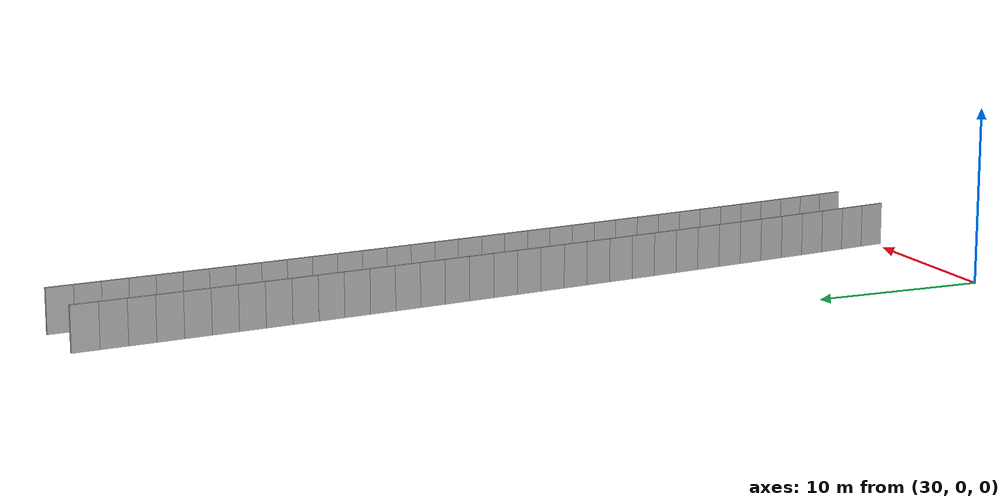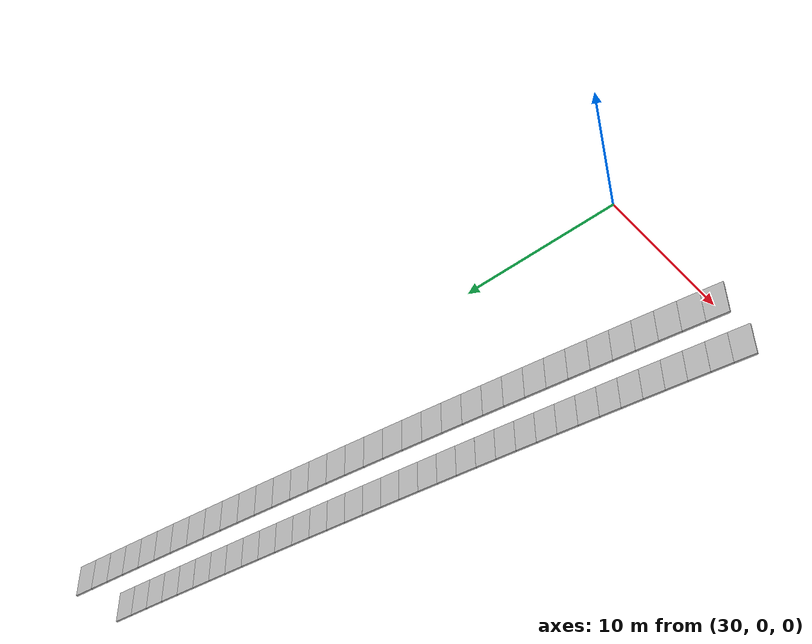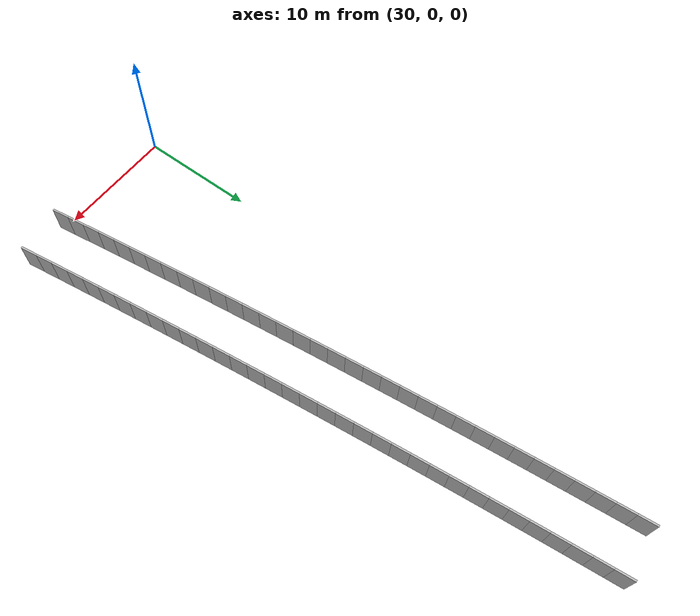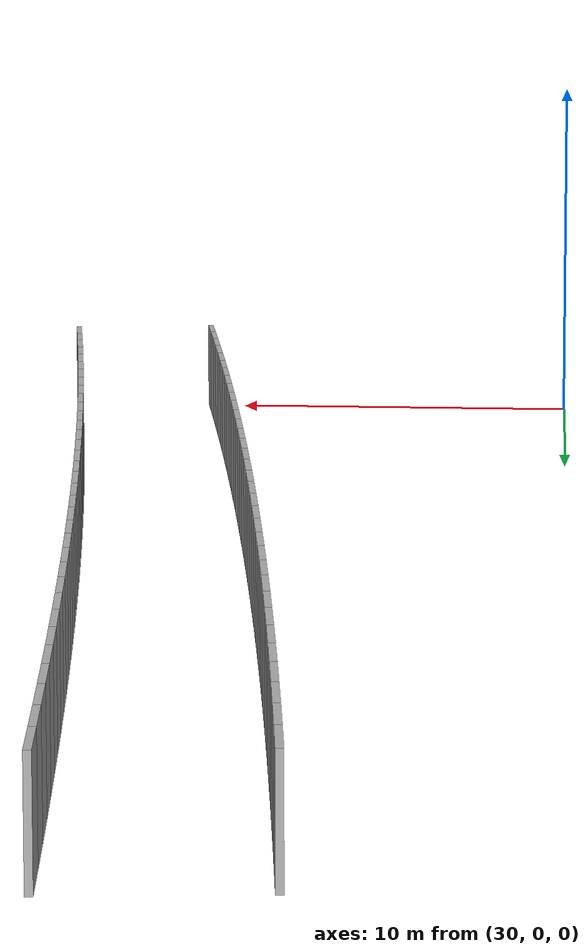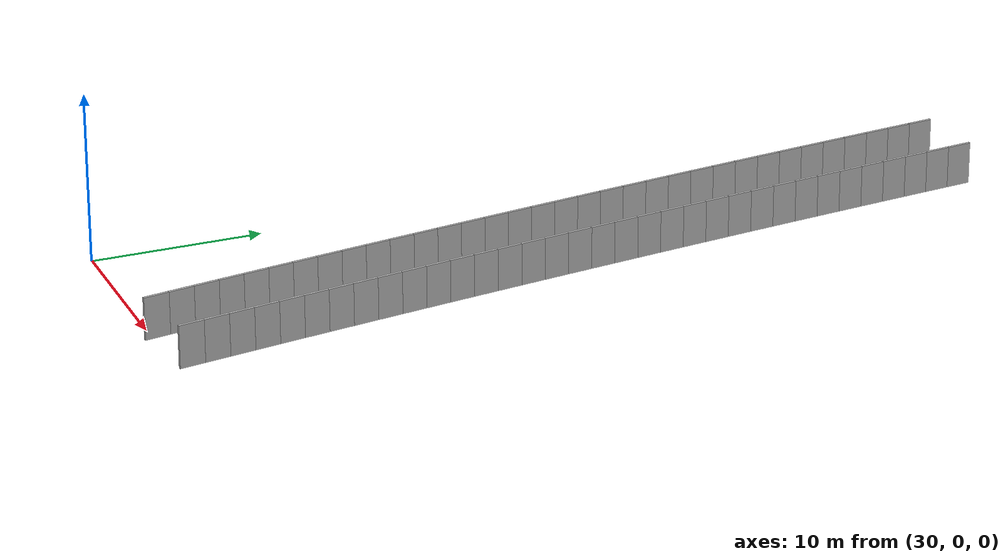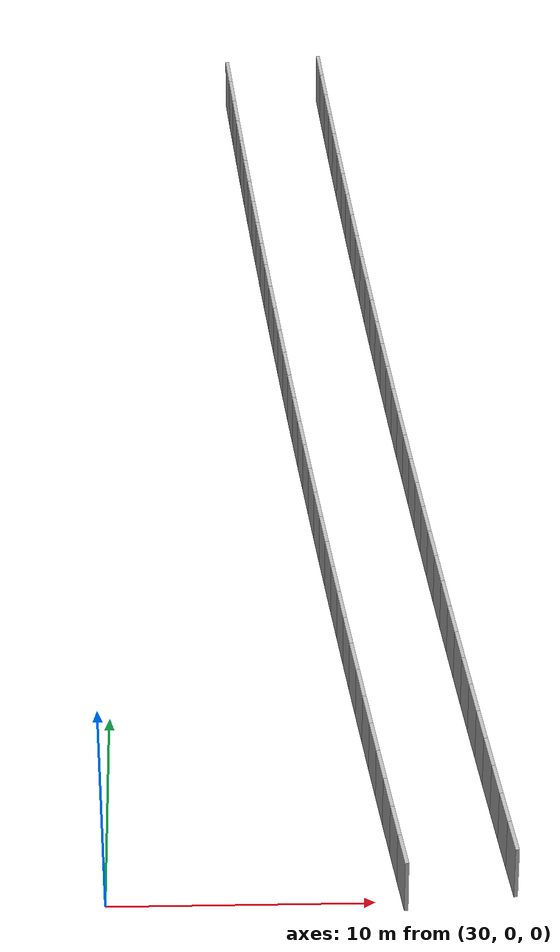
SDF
<?xml version="1.0" ?>
<sdf version="1.6">
  <model name="sps_0223">
    <pose frame="">0 0 0 0 -0 0</pose>
    <static>1</static>
    <self_collide>0</self_collide>
    <allow_auto_disable>0</allow_auto_disable>
    <link name="Wall5270">
      <kinematic>0</kinematic>
      <gravity>1</gravity>
      <self_collide>0</self_collide>
      <collision name="collision">
        <geometry>
          <box>
            <size>1.49644 0.15 2.5</size>
          </box>
        </geometry>
        <pose frame="">0 0 0 0 -0 0</pose>
      </collision>
      <visual name="visual">
        <geometry>
          <box>
            <size>1.49644 0.15 2.5</size>
          </box>
        </geometry>
        <pose frame="">0 0 0 0 -0 0</pose>
        <cast_shadows>1</cast_shadows>
        <transparency>0.0</transparency>
      </visual>
      <pose frame="">38.9795 49.9341 1.25 0 0 -1.47238</pose>
    </link>
    <link name="Wall5271">
      <kinematic>0</kinematic>
      <gravity>1</gravity>
      <self_collide>0</self_collide>
      <collision name="collision">
        <geometry>
          <box>
            <size>1.49667 0.15 2.5</size>
          </box>
        </geometry>
        <pose frame="">0 0 0 0 -0 0</pose>
      </collision>
      <visual name="visual">
        <geometry>
          <box>
            <size>1.49667 0.15 2.5</size>
          </box>
        </geometry>
        <pose frame="">0 0 0 0 -0 0</pose>
        <cast_shadows>1</cast_shadows>
        <transparency>0.0</transparency>
      </visual>
      <pose frame="">39.1278 48.4449 1.25 0 0 -1.4708</pose>
    </link>
    <link name="Wall5272">
      <kinematic>0</kinematic>
      <gravity>1</gravity>
      <self_collide>0</self_collide>
      <collision name="collision">
        <geometry>
          <box>
            <size>1.49649 0.15 2.5</size>
          </box>
        </geometry>
        <pose frame="">0 0 0 0 -0 0</pose>
      </collision>
      <visual name="visual">
        <geometry>
          <box>
            <size>1.49649 0.15 2.5</size>
          </box>
        </geometry>
        <pose frame="">0 0 0 0 -0 0</pose>
        <cast_shadows>1</cast_shadows>
        <transparency>0.0</transparency>
      </visual>
      <pose frame="">39.2784 46.9559 1.25 0 0 -1.46919</pose>
    </link>
    <link name="Wall5273">
      <kinematic>0</kinematic>
      <gravity>1</gravity>
      <self_collide>0</self_collide>
      <collision name="collision">
        <geometry>
          <box>
            <size>1.49653 0.15 2.5</size>
          </box>
        </geometry>
        <pose frame="">0 0 0 0 -0 0</pose>
      </collision>
      <visual name="visual">
        <geometry>
          <box>
            <size>1.49653 0.15 2.5</size>
          </box>
        </geometry>
        <pose frame="">0 0 0 0 -0 0</pose>
        <cast_shadows>1</cast_shadows>
        <transparency>0.0</transparency>
      </visual>
      <pose frame="">39.4313 45.4672 1.25 0 0 -1.46771</pose>
    </link>
    <link name="Wall5274">
      <kinematic>0</kinematic>
      <gravity>1</gravity>
      <self_collide>0</self_collide>
      <collision name="collision">
        <geometry>
          <box>
            <size>1.49644 0.15 2.5</size>
          </box>
        </geometry>
        <pose frame="">0 0 0 0 -0 0</pose>
      </collision>
      <visual name="visual">
        <geometry>
          <box>
            <size>1.49644 0.15 2.5</size>
          </box>
        </geometry>
        <pose frame="">0 0 0 0 -0 0</pose>
        <cast_shadows>1</cast_shadows>
        <transparency>0.0</transparency>
      </visual>
      <pose frame="">39.5866 43.9788 1.25 0 0 -1.46595</pose>
    </link>
    <link name="Wall5275">
      <kinematic>0</kinematic>
      <gravity>1</gravity>
      <self_collide>0</self_collide>
      <collision name="collision">
        <geometry>
          <box>
            <size>1.49666 0.15 2.5</size>
          </box>
        </geometry>
        <pose frame="">0 0 0 0 -0 0</pose>
      </collision>
      <visual name="visual">
        <geometry>
          <box>
            <size>1.49666 0.15 2.5</size>
          </box>
        </geometry>
        <pose frame="">0 0 0 0 -0 0</pose>
        <cast_shadows>1</cast_shadows>
        <transparency>0.0</transparency>
      </visual>
      <pose frame="">39.7443 42.4906 1.25 0 0 -1.46453</pose>
    </link>
    <link name="Wall5276">
      <kinematic>0</kinematic>
      <gravity>1</gravity>
      <self_collide>0</self_collide>
      <collision name="collision">
        <geometry>
          <box>
            <size>1.49648 0.15 2.5</size>
          </box>
        </geometry>
        <pose frame="">0 0 0 0 -0 0</pose>
      </collision>
      <visual name="visual">
        <geometry>
          <box>
            <size>1.49648 0.15 2.5</size>
          </box>
        </geometry>
        <pose frame="">0 0 0 0 -0 0</pose>
        <cast_shadows>1</cast_shadows>
        <transparency>0.0</transparency>
      </visual>
      <pose frame="">39.9041 41.0026 1.25 0 0 -1.46299</pose>
    </link>
    <link name="Wall5277">
      <kinematic>0</kinematic>
      <gravity>1</gravity>
      <self_collide>0</self_collide>
      <collision name="collision">
        <geometry>
          <box>
            <size>1.49656 0.15 2.5</size>
          </box>
        </geometry>
        <pose frame="">0 0 0 0 -0 0</pose>
      </collision>
      <visual name="visual">
        <geometry>
          <box>
            <size>1.49656 0.15 2.5</size>
          </box>
        </geometry>
        <pose frame="">0 0 0 0 -0 0</pose>
        <cast_shadows>1</cast_shadows>
        <transparency>0.0</transparency>
      </visual>
      <pose frame="">40.0663 39.5149 1.25 0 0 -1.4614</pose>
    </link>
    <link name="Wall5278">
      <kinematic>0</kinematic>
      <gravity>1</gravity>
      <self_collide>0</self_collide>
      <collision name="collision">
        <geometry>
          <box>
            <size>1.49642 0.15 2.5</size>
          </box>
        </geometry>
        <pose frame="">0 0 0 0 -0 0</pose>
      </collision>
      <visual name="visual">
        <geometry>
          <box>
            <size>1.49642 0.15 2.5</size>
          </box>
        </geometry>
        <pose frame="">0 0 0 0 -0 0</pose>
        <cast_shadows>1</cast_shadows>
        <transparency>0.0</transparency>
      </visual>
      <pose frame="">40.231 38.0275 1.25 0 0 -1.45963</pose>
    </link>
    <link name="Wall5279">
      <kinematic>0</kinematic>
      <gravity>1</gravity>
      <self_collide>0</self_collide>
      <collision name="collision">
        <geometry>
          <box>
            <size>1.4965 0.15 2.5</size>
          </box>
        </geometry>
        <pose frame="">0 0 0 0 -0 0</pose>
      </collision>
      <visual name="visual">
        <geometry>
          <box>
            <size>1.4965 0.15 2.5</size>
          </box>
        </geometry>
        <pose frame="">0 0 0 0 -0 0</pose>
        <cast_shadows>1</cast_shadows>
        <transparency>0.0</transparency>
      </visual>
      <pose frame="">40.3982 36.5404 1.25 0 0 -1.45803</pose>
    </link>
    <link name="Wall5280">
      <kinematic>0</kinematic>
      <gravity>1</gravity>
      <self_collide>0</self_collide>
      <collision name="collision">
        <geometry>
          <box>
            <size>1.49657 0.15 2.5</size>
          </box>
        </geometry>
        <pose frame="">0 0 0 0 -0 0</pose>
      </collision>
      <visual name="visual">
        <geometry>
          <box>
            <size>1.49657 0.15 2.5</size>
          </box>
        </geometry>
        <pose frame="">0 0 0 0 -0 0</pose>
        <cast_shadows>1</cast_shadows>
        <transparency>0.0</transparency>
      </visual>
      <pose frame="">40.5677 35.0535 1.25 0 0 -1.45656</pose>
    </link>
    <link name="Wall5281">
      <kinematic>0</kinematic>
      <gravity>1</gravity>
      <self_collide>0</self_collide>
      <collision name="collision">
        <geometry>
          <box>
            <size>1.49658 0.15 2.5</size>
          </box>
        </geometry>
        <pose frame="">0 0 0 0 -0 0</pose>
      </collision>
      <visual name="visual">
        <geometry>
          <box>
            <size>1.49658 0.15 2.5</size>
          </box>
        </geometry>
        <pose frame="">0 0 0 0 -0 0</pose>
        <cast_shadows>1</cast_shadows>
        <transparency>0.0</transparency>
      </visual>
      <pose frame="">40.7394 33.5668 1.25 0 0 -1.45508</pose>
    </link>
    <link name="Wall5282">
      <kinematic>0</kinematic>
      <gravity>1</gravity>
      <self_collide>0</self_collide>
      <collision name="collision">
        <geometry>
          <box>
            <size>1.49652 0.15 2.5</size>
          </box>
        </geometry>
        <pose frame="">0 0 0 0 -0 0</pose>
      </collision>
      <visual name="visual">
        <geometry>
          <box>
            <size>1.49652 0.15 2.5</size>
          </box>
        </geometry>
        <pose frame="">0 0 0 0 -0 0</pose>
        <cast_shadows>1</cast_shadows>
        <transparency>0.0</transparency>
      </visual>
      <pose frame="">40.9135 32.0804 1.25 0 0 -1.45331</pose>
    </link>
    <link name="Wall5283">
      <kinematic>0</kinematic>
      <gravity>1</gravity>
      <self_collide>0</self_collide>
      <collision name="collision">
        <geometry>
          <box>
            <size>1.4966 0.15 2.5</size>
          </box>
        </geometry>
        <pose frame="">0 0 0 0 -0 0</pose>
      </collision>
      <visual name="visual">
        <geometry>
          <box>
            <size>1.4966 0.15 2.5</size>
          </box>
        </geometry>
        <pose frame="">0 0 0 0 -0 0</pose>
        <cast_shadows>1</cast_shadows>
        <transparency>0.0</transparency>
      </visual>
      <pose frame="">41.09 30.5943 1.25 0 0 -1.45184</pose>
    </link>
    <link name="Wall5284">
      <kinematic>0</kinematic>
      <gravity>1</gravity>
      <self_collide>0</self_collide>
      <collision name="collision">
        <geometry>
          <box>
            <size>1.49646 0.15 2.5</size>
          </box>
        </geometry>
        <pose frame="">0 0 0 0 -0 0</pose>
      </collision>
      <visual name="visual">
        <geometry>
          <box>
            <size>1.49646 0.15 2.5</size>
          </box>
        </geometry>
        <pose frame="">0 0 0 0 -0 0</pose>
        <cast_shadows>1</cast_shadows>
        <transparency>0.0</transparency>
      </visual>
      <pose frame="">41.2689 29.1085 1.25 0 0 -1.45023</pose>
    </link>
    <link name="Wall5285">
      <kinematic>0</kinematic>
      <gravity>1</gravity>
      <self_collide>0</self_collide>
      <collision name="collision">
        <geometry>
          <box>
            <size>1.49657 0.15 2.5</size>
          </box>
        </geometry>
        <pose frame="">0 0 0 0 -0 0</pose>
      </collision>
      <visual name="visual">
        <geometry>
          <box>
            <size>1.49657 0.15 2.5</size>
          </box>
        </geometry>
        <pose frame="">0 0 0 0 -0 0</pose>
        <cast_shadows>1</cast_shadows>
        <transparency>0.0</transparency>
      </visual>
      <pose frame="">41.4501 27.623 1.25 0 0 -1.44859</pose>
    </link>
    <link name="Wall5286">
      <kinematic>0</kinematic>
      <gravity>1</gravity>
      <self_collide>0</self_collide>
      <collision name="collision">
        <geometry>
          <box>
            <size>1.49643 0.15 2.5</size>
          </box>
        </geometry>
        <pose frame="">0 0 0 0 -0 0</pose>
      </collision>
      <visual name="visual">
        <geometry>
          <box>
            <size>1.49643 0.15 2.5</size>
          </box>
        </geometry>
        <pose frame="">0 0 0 0 -0 0</pose>
        <cast_shadows>1</cast_shadows>
        <transparency>0.0</transparency>
      </visual>
      <pose frame="">41.6337 26.1378 1.25 0 0 -1.44702</pose>
    </link>
    <link name="Wall5287">
      <kinematic>0</kinematic>
      <gravity>1</gravity>
      <self_collide>0</self_collide>
      <collision name="collision">
        <geometry>
          <box>
            <size>1.49653 0.15 2.5</size>
          </box>
        </geometry>
        <pose frame="">0 0 0 0 -0 0</pose>
      </collision>
      <visual name="visual">
        <geometry>
          <box>
            <size>1.49653 0.15 2.5</size>
          </box>
        </geometry>
        <pose frame="">0 0 0 0 -0 0</pose>
        <cast_shadows>1</cast_shadows>
        <transparency>0.0</transparency>
      </visual>
      <pose frame="">41.8195 24.6529 1.25 0 0 -1.44551</pose>
    </link>
    <link name="Wall5288">
      <kinematic>0</kinematic>
      <gravity>1</gravity>
      <self_collide>0</self_collide>
      <collision name="collision">
        <geometry>
          <box>
            <size>1.49659 0.15 2.5</size>
          </box>
        </geometry>
        <pose frame="">0 0 0 0 -0 0</pose>
      </collision>
      <visual name="visual">
        <geometry>
          <box>
            <size>1.49659 0.15 2.5</size>
          </box>
        </geometry>
        <pose frame="">0 0 0 0 -0 0</pose>
        <cast_shadows>1</cast_shadows>
        <transparency>0.0</transparency>
      </visual>
      <pose frame="">42.0077 23.1682 1.25 0 0 -1.44391</pose>
    </link>
    <link name="Wall5289">
      <kinematic>0</kinematic>
      <gravity>1</gravity>
      <self_collide>0</self_collide>
      <collision name="collision">
        <geometry>
          <box>
            <size>1.49657 0.15 2.5</size>
          </box>
        </geometry>
        <pose frame="">0 0 0 0 -0 0</pose>
      </collision>
      <visual name="visual">
        <geometry>
          <box>
            <size>1.49657 0.15 2.5</size>
          </box>
        </geometry>
        <pose frame="">0 0 0 0 -0 0</pose>
        <cast_shadows>1</cast_shadows>
        <transparency>0.0</transparency>
      </visual>
      <pose frame="">42.1982 21.6838 1.25 0 0 -1.44242</pose>
    </link>
    <link name="Wall5290">
      <kinematic>0</kinematic>
      <gravity>1</gravity>
      <self_collide>0</self_collide>
      <collision name="collision">
        <geometry>
          <box>
            <size>1.49642 0.15 2.5</size>
          </box>
        </geometry>
        <pose frame="">0 0 0 0 -0 0</pose>
      </collision>
      <visual name="visual">
        <geometry>
          <box>
            <size>1.49642 0.15 2.5</size>
          </box>
        </geometry>
        <pose frame="">0 0 0 0 -0 0</pose>
        <cast_shadows>1</cast_shadows>
        <transparency>0.0</transparency>
      </visual>
      <pose frame="">42.3911 20.1998 1.25 0 0 -1.44064</pose>
    </link>
    <link name="Wall5291">
      <kinematic>0</kinematic>
      <gravity>1</gravity>
      <self_collide>0</self_collide>
      <collision name="collision">
        <geometry>
          <box>
            <size>1.49655 0.15 2.5</size>
          </box>
        </geometry>
        <pose frame="">0 0 0 0 -0 0</pose>
      </collision>
      <visual name="visual">
        <geometry>
          <box>
            <size>1.49655 0.15 2.5</size>
          </box>
        </geometry>
        <pose frame="">0 0 0 0 -0 0</pose>
        <cast_shadows>1</cast_shadows>
        <transparency>0.0</transparency>
      </visual>
      <pose frame="">42.5865 18.7161 1.25 0 0 -1.43905</pose>
    </link>
    <link name="Wall5292">
      <kinematic>0</kinematic>
      <gravity>1</gravity>
      <self_collide>0</self_collide>
      <collision name="collision">
        <geometry>
          <box>
            <size>1.49648 0.15 2.5</size>
          </box>
        </geometry>
        <pose frame="">0 0 0 0 -0 0</pose>
      </collision>
      <visual name="visual">
        <geometry>
          <box>
            <size>1.49648 0.15 2.5</size>
          </box>
        </geometry>
        <pose frame="">0 0 0 0 -0 0</pose>
        <cast_shadows>1</cast_shadows>
        <transparency>0.0</transparency>
      </visual>
      <pose frame="">42.7842 17.2327 1.25 0 0 -1.43756</pose>
    </link>
    <link name="Wall5293">
      <kinematic>0</kinematic>
      <gravity>1</gravity>
      <self_collide>0</self_collide>
      <collision name="collision">
        <geometry>
          <box>
            <size>1.49662 0.15 2.5</size>
          </box>
        </geometry>
        <pose frame="">0 0 0 0 -0 0</pose>
      </collision>
      <visual name="visual">
        <geometry>
          <box>
            <size>1.49662 0.15 2.5</size>
          </box>
        </geometry>
        <pose frame="">0 0 0 0 -0 0</pose>
        <cast_shadows>1</cast_shadows>
        <transparency>0.0</transparency>
      </visual>
      <pose frame="">42.9842 15.7496 1.25 0 0 -1.43593</pose>
    </link>
    <link name="Wall5294">
      <kinematic>0</kinematic>
      <gravity>1</gravity>
      <self_collide>0</self_collide>
      <collision name="collision">
        <geometry>
          <box>
            <size>1.49649 0.15 2.5</size>
          </box>
        </geometry>
        <pose frame="">0 0 0 0 -0 0</pose>
      </collision>
      <visual name="visual">
        <geometry>
          <box>
            <size>1.49649 0.15 2.5</size>
          </box>
        </geometry>
        <pose frame="">0 0 0 0 -0 0</pose>
        <cast_shadows>1</cast_shadows>
        <transparency>0.0</transparency>
      </visual>
      <pose frame="">43.1865 14.2668 1.25 0 0 -1.43448</pose>
    </link>
    <link name="Wall5295">
      <kinematic>0</kinematic>
      <gravity>1</gravity>
      <self_collide>0</self_collide>
      <collision name="collision">
        <geometry>
          <box>
            <size>1.49643 0.15 2.5</size>
          </box>
        </geometry>
        <pose frame="">0 0 0 0 -0 0</pose>
      </collision>
      <visual name="visual">
        <geometry>
          <box>
            <size>1.49643 0.15 2.5</size>
          </box>
        </geometry>
        <pose frame="">0 0 0 0 -0 0</pose>
        <cast_shadows>1</cast_shadows>
        <transparency>0.0</transparency>
      </visual>
      <pose frame="">43.3913 12.7844 1.25 0 0 -1.43266</pose>
    </link>
    <link name="Wall5296">
      <kinematic>0</kinematic>
      <gravity>1</gravity>
      <self_collide>0</self_collide>
      <collision name="collision">
        <geometry>
          <box>
            <size>1.49651 0.15 2.5</size>
          </box>
        </geometry>
        <pose frame="">0 0 0 0 -0 0</pose>
      </collision>
      <visual name="visual">
        <geometry>
          <box>
            <size>1.49651 0.15 2.5</size>
          </box>
        </geometry>
        <pose frame="">0 0 0 0 -0 0</pose>
        <cast_shadows>1</cast_shadows>
        <transparency>0.0</transparency>
      </visual>
      <pose frame="">43.5983 11.3023 1.25 0 0 -1.43139</pose>
    </link>
    <link name="Wall5297">
      <kinematic>0</kinematic>
      <gravity>1</gravity>
      <self_collide>0</self_collide>
      <collision name="collision">
        <geometry>
          <box>
            <size>1.49653 0.15 2.5</size>
          </box>
        </geometry>
        <pose frame="">0 0 0 0 -0 0</pose>
      </collision>
      <visual name="visual">
        <geometry>
          <box>
            <size>1.49653 0.15 2.5</size>
          </box>
        </geometry>
        <pose frame="">0 0 0 0 -0 0</pose>
        <cast_shadows>1</cast_shadows>
        <transparency>0.0</transparency>
      </visual>
      <pose frame="">43.8075 9.82048 1.25 0 0 -1.42958</pose>
    </link>
    <link name="Wall5298">
      <kinematic>0</kinematic>
      <gravity>1</gravity>
      <self_collide>0</self_collide>
      <collision name="collision">
        <geometry>
          <box>
            <size>1.49659 0.15 2.5</size>
          </box>
        </geometry>
        <pose frame="">0 0 0 0 -0 0</pose>
      </collision>
      <visual name="visual">
        <geometry>
          <box>
            <size>1.49659 0.15 2.5</size>
          </box>
        </geometry>
        <pose frame="">0 0 0 0 -0 0</pose>
        <cast_shadows>1</cast_shadows>
        <transparency>0.0</transparency>
      </visual>
      <pose frame="">44.0192 8.33897 1.25 0 0 -1.42814</pose>
    </link>
    <link name="Wall5299">
      <kinematic>0</kinematic>
      <gravity>1</gravity>
      <self_collide>0</self_collide>
      <collision name="collision">
        <geometry>
          <box>
            <size>1.49633 0.15 2.5</size>
          </box>
        </geometry>
        <pose frame="">0 0 0 0 -0 0</pose>
      </collision>
      <visual name="visual">
        <geometry>
          <box>
            <size>1.49633 0.15 2.5</size>
          </box>
        </geometry>
        <pose frame="">0 0 0 0 -0 0</pose>
        <cast_shadows>1</cast_shadows>
        <transparency>0.0</transparency>
      </visual>
      <pose frame="">44.2332 6.85789 1.25 0 0 -1.42647</pose>
    </link>
    <link name="Wall5300">
      <kinematic>0</kinematic>
      <gravity>1</gravity>
      <self_collide>0</self_collide>
      <collision name="collision">
        <geometry>
          <box>
            <size>1.49677 0.15 2.5</size>
          </box>
        </geometry>
        <pose frame="">0 0 0 0 -0 0</pose>
      </collision>
      <visual name="visual">
        <geometry>
          <box>
            <size>1.49677 0.15 2.5</size>
          </box>
        </geometry>
        <pose frame="">0 0 0 0 -0 0</pose>
        <cast_shadows>1</cast_shadows>
        <transparency>0.0</transparency>
      </visual>
      <pose frame="">44.4498 5.37709 1.25 0 0 -1.42474</pose>
    </link>
    <link name="Wall5301">
      <kinematic>0</kinematic>
      <gravity>1</gravity>
      <self_collide>0</self_collide>
      <collision name="collision">
        <geometry>
          <box>
            <size>1.49642 0.15 2.5</size>
          </box>
        </geometry>
        <pose frame="">0 0 0 0 -0 0</pose>
      </collision>
      <visual name="visual">
        <geometry>
          <box>
            <size>1.49642 0.15 2.5</size>
          </box>
        </geometry>
        <pose frame="">0 0 0 0 -0 0</pose>
        <cast_shadows>1</cast_shadows>
        <transparency>0.0</transparency>
      </visual>
      <pose frame="">44.6687 3.89659 1.25 0 0 -1.42326</pose>
    </link>
    <link name="Wall5302">
      <kinematic>0</kinematic>
      <gravity>1</gravity>
      <self_collide>0</self_collide>
      <collision name="collision">
        <geometry>
          <box>
            <size>1.49663 0.15 2.5</size>
          </box>
        </geometry>
        <pose frame="">0 0 0 0 -0 0</pose>
      </collision>
      <visual name="visual">
        <geometry>
          <box>
            <size>1.49663 0.15 2.5</size>
          </box>
        </geometry>
        <pose frame="">0 0 0 0 -0 0</pose>
        <cast_shadows>1</cast_shadows>
        <transparency>0.0</transparency>
      </visual>
      <pose frame="">44.8898 2.41649 1.25 0 0 -1.42176</pose>
    </link>
    <link name="Wall5303">
      <kinematic>0</kinematic>
      <gravity>1</gravity>
      <self_collide>0</self_collide>
      <collision name="collision">
        <geometry>
          <box>
            <size>1.49632 0.15 2.5</size>
          </box>
        </geometry>
        <pose frame="">0 0 0 0 -0 0</pose>
      </collision>
      <visual name="visual">
        <geometry>
          <box>
            <size>1.49632 0.15 2.5</size>
          </box>
        </geometry>
        <pose frame="">0 0 0 0 -0 0</pose>
        <cast_shadows>1</cast_shadows>
        <transparency>0.0</transparency>
      </visual>
      <pose frame="">45.1132 0.936782 1.25 0 0 -1.42012</pose>
    </link>
    <link name="Wall7066">
      <kinematic>0</kinematic>
      <gravity>1</gravity>
      <self_collide>0</self_collide>
      <collision name="collision">
        <geometry>
          <box>
            <size>1.50305 0.15 2.5</size>
          </box>
        </geometry>
        <pose frame="">0 0 0 0 -0 0</pose>
      </collision>
      <visual name="visual">
        <geometry>
          <box>
            <size>1.50305 0.15 2.5</size>
          </box>
        </geometry>
        <pose frame="">0 0 0 0 -0 0</pose>
        <cast_shadows>1</cast_shadows>
        <transparency>0.0</transparency>
      </visual>
      <pose frame="">34.8603 49.5272 1.25 0 0 -1.47245</pose>
    </link>
    <link name="Wall7067">
      <kinematic>0</kinematic>
      <gravity>1</gravity>
      <self_collide>0</self_collide>
      <collision name="collision">
        <geometry>
          <box>
            <size>1.50313 0.15 2.5</size>
          </box>
        </geometry>
        <pose frame="">0 0 0 0 -0 0</pose>
      </collision>
      <visual name="visual">
        <geometry>
          <box>
            <size>1.50313 0.15 2.5</size>
          </box>
        </geometry>
        <pose frame="">0 0 0 0 -0 0</pose>
        <cast_shadows>1</cast_shadows>
        <transparency>0.0</transparency>
      </visual>
      <pose frame="">35.0091 48.0315 1.25 0 0 -1.4707</pose>
    </link>
    <link name="Wall7068">
      <kinematic>0</kinematic>
      <gravity>1</gravity>
      <self_collide>0</self_collide>
      <collision name="collision">
        <geometry>
          <box>
            <size>1.50317 0.15 2.5</size>
          </box>
        </geometry>
        <pose frame="">0 0 0 0 -0 0</pose>
      </collision>
      <visual name="visual">
        <geometry>
          <box>
            <size>1.50317 0.15 2.5</size>
          </box>
        </geometry>
        <pose frame="">0 0 0 0 -0 0</pose>
        <cast_shadows>1</cast_shadows>
        <transparency>0.0</transparency>
      </visual>
      <pose frame="">35.1605 46.536 1.25 0 0 -1.46923</pose>
    </link>
    <link name="Wall7069">
      <kinematic>0</kinematic>
      <gravity>1</gravity>
      <self_collide>0</self_collide>
      <collision name="collision">
        <geometry>
          <box>
            <size>1.50299 0.15 2.5</size>
          </box>
        </geometry>
        <pose frame="">0 0 0 0 -0 0</pose>
      </collision>
      <visual name="visual">
        <geometry>
          <box>
            <size>1.50299 0.15 2.5</size>
          </box>
        </geometry>
        <pose frame="">0 0 0 0 -0 0</pose>
        <cast_shadows>1</cast_shadows>
        <transparency>0.0</transparency>
      </visual>
      <pose frame="">35.314 45.0408 1.25 0 0 -1.46763</pose>
    </link>
    <link name="Wall7070">
      <kinematic>0</kinematic>
      <gravity>1</gravity>
      <self_collide>0</self_collide>
      <collision name="collision">
        <geometry>
          <box>
            <size>1.50306 0.15 2.5</size>
          </box>
        </geometry>
        <pose frame="">0 0 0 0 -0 0</pose>
      </collision>
      <visual name="visual">
        <geometry>
          <box>
            <size>1.50306 0.15 2.5</size>
          </box>
        </geometry>
        <pose frame="">0 0 0 0 -0 0</pose>
        <cast_shadows>1</cast_shadows>
        <transparency>0.0</transparency>
      </visual>
      <pose frame="">35.4701 43.5459 1.25 0 0 -1.466</pose>
    </link>
    <link name="Wall7071">
      <kinematic>0</kinematic>
      <gravity>1</gravity>
      <self_collide>0</self_collide>
      <collision name="collision">
        <geometry>
          <box>
            <size>1.50304 0.15 2.5</size>
          </box>
        </geometry>
        <pose frame="">0 0 0 0 -0 0</pose>
      </collision>
      <visual name="visual">
        <geometry>
          <box>
            <size>1.50304 0.15 2.5</size>
          </box>
        </geometry>
        <pose frame="">0 0 0 0 -0 0</pose>
        <cast_shadows>1</cast_shadows>
        <transparency>0.0</transparency>
      </visual>
      <pose frame="">35.6283 42.0512 1.25 0 0 -1.46457</pose>
    </link>
    <link name="Wall7072">
      <kinematic>0</kinematic>
      <gravity>1</gravity>
      <self_collide>0</self_collide>
      <collision name="collision">
        <geometry>
          <box>
            <size>1.50336 0.15 2.5</size>
          </box>
        </geometry>
        <pose frame="">0 0 0 0 -0 0</pose>
      </collision>
      <visual name="visual">
        <geometry>
          <box>
            <size>1.50336 0.15 2.5</size>
          </box>
        </geometry>
        <pose frame="">0 0 0 0 -0 0</pose>
        <cast_shadows>1</cast_shadows>
        <transparency>0.0</transparency>
      </visual>
      <pose frame="">35.7889 40.5566 1.25 0 0 -1.46296</pose>
    </link>
    <link name="Wall7073">
      <kinematic>0</kinematic>
      <gravity>1</gravity>
      <self_collide>0</self_collide>
      <collision name="collision">
        <geometry>
          <box>
            <size>1.50296 0.15 2.5</size>
          </box>
        </geometry>
        <pose frame="">0 0 0 0 -0 0</pose>
      </collision>
      <visual name="visual">
        <geometry>
          <box>
            <size>1.50296 0.15 2.5</size>
          </box>
        </geometry>
        <pose frame="">0 0 0 0 -0 0</pose>
        <cast_shadows>1</cast_shadows>
        <transparency>0.0</transparency>
      </visual>
      <pose frame="">35.952 39.0623 1.25 0 0 -1.4613</pose>
    </link>
    <link name="Wall7074">
      <kinematic>0</kinematic>
      <gravity>1</gravity>
      <self_collide>0</self_collide>
      <collision name="collision">
        <geometry>
          <box>
            <size>1.50309 0.15 2.5</size>
          </box>
        </geometry>
        <pose frame="">0 0 0 0 -0 0</pose>
      </collision>
      <visual name="visual">
        <geometry>
          <box>
            <size>1.50309 0.15 2.5</size>
          </box>
        </geometry>
        <pose frame="">0 0 0 0 -0 0</pose>
        <cast_shadows>1</cast_shadows>
        <transparency>0.0</transparency>
      </visual>
      <pose frame="">36.1174 37.5684 1.25 0 0 -1.45975</pose>
    </link>
    <link name="Wall7075">
      <kinematic>0</kinematic>
      <gravity>1</gravity>
      <self_collide>0</self_collide>
      <collision name="collision">
        <geometry>
          <box>
            <size>1.50312 0.15 2.5</size>
          </box>
        </geometry>
        <pose frame="">0 0 0 0 -0 0</pose>
      </collision>
      <visual name="visual">
        <geometry>
          <box>
            <size>1.50312 0.15 2.5</size>
          </box>
        </geometry>
        <pose frame="">0 0 0 0 -0 0</pose>
        <cast_shadows>1</cast_shadows>
        <transparency>0.0</transparency>
      </visual>
      <pose frame="">36.2851 36.0747 1.25 0 0 -1.45812</pose>
    </link>
    <link name="Wall7076">
      <kinematic>0</kinematic>
      <gravity>1</gravity>
      <self_collide>0</self_collide>
      <collision name="collision">
        <geometry>
          <box>
            <size>1.50303 0.15 2.5</size>
          </box>
        </geometry>
        <pose frame="">0 0 0 0 -0 0</pose>
      </collision>
      <visual name="visual">
        <geometry>
          <box>
            <size>1.50303 0.15 2.5</size>
          </box>
        </geometry>
        <pose frame="">0 0 0 0 -0 0</pose>
        <cast_shadows>1</cast_shadows>
        <transparency>0.0</transparency>
      </visual>
      <pose frame="">36.4553 34.5813 1.25 0 0 -1.45652</pose>
    </link>
    <link name="Wall7077">
      <kinematic>0</kinematic>
      <gravity>1</gravity>
      <self_collide>0</self_collide>
      <collision name="collision">
        <geometry>
          <box>
            <size>1.50305 0.15 2.5</size>
          </box>
        </geometry>
        <pose frame="">0 0 0 0 -0 0</pose>
      </collision>
      <visual name="visual">
        <geometry>
          <box>
            <size>1.50305 0.15 2.5</size>
          </box>
        </geometry>
        <pose frame="">0 0 0 0 -0 0</pose>
        <cast_shadows>1</cast_shadows>
        <transparency>0.0</transparency>
      </visual>
      <pose frame="">36.6279 33.0882 1.25 0 0 -1.45501</pose>
    </link>
    <link name="Wall7078">
      <kinematic>0</kinematic>
      <gravity>1</gravity>
      <self_collide>0</self_collide>
      <collision name="collision">
        <geometry>
          <box>
            <size>1.50315 0.15 2.5</size>
          </box>
        </geometry>
        <pose frame="">0 0 0 0 -0 0</pose>
      </collision>
      <visual name="visual">
        <geometry>
          <box>
            <size>1.50315 0.15 2.5</size>
          </box>
        </geometry>
        <pose frame="">0 0 0 0 -0 0</pose>
        <cast_shadows>1</cast_shadows>
        <transparency>0.0</transparency>
      </visual>
      <pose frame="">36.8028 31.5953 1.25 0 0 -1.45334</pose>
    </link>
    <link name="Wall7079">
      <kinematic>0</kinematic>
      <gravity>1</gravity>
      <self_collide>0</self_collide>
      <collision name="collision">
        <geometry>
          <box>
            <size>1.503 0.15 2.5</size>
          </box>
        </geometry>
        <pose frame="">0 0 0 0 -0 0</pose>
      </collision>
      <visual name="visual">
        <geometry>
          <box>
            <size>1.503 0.15 2.5</size>
          </box>
        </geometry>
        <pose frame="">0 0 0 0 -0 0</pose>
        <cast_shadows>1</cast_shadows>
        <transparency>0.0</transparency>
      </visual>
      <pose frame="">36.98 30.1027 1.25 0 0 -1.45182</pose>
    </link>
    <link name="Wall7080">
      <kinematic>0</kinematic>
      <gravity>1</gravity>
      <self_collide>0</self_collide>
      <collision name="collision">
        <geometry>
          <box>
            <size>1.50317 0.15 2.5</size>
          </box>
        </geometry>
        <pose frame="">0 0 0 0 -0 0</pose>
      </collision>
      <visual name="visual">
        <geometry>
          <box>
            <size>1.50317 0.15 2.5</size>
          </box>
        </geometry>
        <pose frame="">0 0 0 0 -0 0</pose>
        <cast_shadows>1</cast_shadows>
        <transparency>0.0</transparency>
      </visual>
      <pose frame="">37.1597 28.6104 1.25 0 0 -1.45019</pose>
    </link>
    <link name="Wall7081">
      <kinematic>0</kinematic>
      <gravity>1</gravity>
      <self_collide>0</self_collide>
      <collision name="collision">
        <geometry>
          <box>
            <size>1.50318 0.15 2.5</size>
          </box>
        </geometry>
        <pose frame="">0 0 0 0 -0 0</pose>
      </collision>
      <visual name="visual">
        <geometry>
          <box>
            <size>1.50318 0.15 2.5</size>
          </box>
        </geometry>
        <pose frame="">0 0 0 0 -0 0</pose>
        <cast_shadows>1</cast_shadows>
        <transparency>0.0</transparency>
      </visual>
      <pose frame="">37.3416 27.1183 1.25 0 0 -1.44876</pose>
    </link>
    <link name="Wall7082">
      <kinematic>0</kinematic>
      <gravity>1</gravity>
      <self_collide>0</self_collide>
      <collision name="collision">
        <geometry>
          <box>
            <size>1.50308 0.15 2.5</size>
          </box>
        </geometry>
        <pose frame="">0 0 0 0 -0 0</pose>
      </collision>
      <visual name="visual">
        <geometry>
          <box>
            <size>1.50308 0.15 2.5</size>
          </box>
        </geometry>
        <pose frame="">0 0 0 0 -0 0</pose>
        <cast_shadows>1</cast_shadows>
        <transparency>0.0</transparency>
      </visual>
      <pose frame="">37.5259 25.6265 1.25 0 0 -1.447</pose>
    </link>
    <link name="Wall7083">
      <kinematic>0</kinematic>
      <gravity>1</gravity>
      <self_collide>0</self_collide>
      <collision name="collision">
        <geometry>
          <box>
            <size>1.50299 0.15 2.5</size>
          </box>
        </geometry>
        <pose frame="">0 0 0 0 -0 0</pose>
      </collision>
      <visual name="visual">
        <geometry>
          <box>
            <size>1.50299 0.15 2.5</size>
          </box>
        </geometry>
        <pose frame="">0 0 0 0 -0 0</pose>
        <cast_shadows>1</cast_shadows>
        <transparency>0.0</transparency>
      </visual>
      <pose frame="">37.7126 24.1351 1.25 0 0 -1.44551</pose>
    </link>
    <link name="Wall7084">
      <kinematic>0</kinematic>
      <gravity>1</gravity>
      <self_collide>0</self_collide>
      <collision name="collision">
        <geometry>
          <box>
            <size>1.50307 0.15 2.5</size>
          </box>
        </geometry>
        <pose frame="">0 0 0 0 -0 0</pose>
      </collision>
      <visual name="visual">
        <geometry>
          <box>
            <size>1.50307 0.15 2.5</size>
          </box>
        </geometry>
        <pose frame="">0 0 0 0 -0 0</pose>
        <cast_shadows>1</cast_shadows>
        <transparency>0.0</transparency>
      </visual>
      <pose frame="">37.9017 22.644 1.25 0 0 -1.4438</pose>
    </link>
    <link name="Wall7085">
      <kinematic>0</kinematic>
      <gravity>1</gravity>
      <self_collide>0</self_collide>
      <collision name="collision">
        <geometry>
          <box>
            <size>1.50321 0.15 2.5</size>
          </box>
        </geometry>
        <pose frame="">0 0 0 0 -0 0</pose>
      </collision>
      <visual name="visual">
        <geometry>
          <box>
            <size>1.50321 0.15 2.5</size>
          </box>
        </geometry>
        <pose frame="">0 0 0 0 -0 0</pose>
        <cast_shadows>1</cast_shadows>
        <transparency>0.0</transparency>
      </visual>
      <pose frame="">38.093 21.1531 1.25 0 0 -1.44246</pose>
    </link>
    <link name="Wall7086">
      <kinematic>0</kinematic>
      <gravity>1</gravity>
      <self_collide>0</self_collide>
      <collision name="collision">
        <geometry>
          <box>
            <size>1.50288 0.15 2.5</size>
          </box>
        </geometry>
        <pose frame="">0 0 0 0 -0 0</pose>
      </collision>
      <visual name="visual">
        <geometry>
          <box>
            <size>1.50288 0.15 2.5</size>
          </box>
        </geometry>
        <pose frame="">0 0 0 0 -0 0</pose>
        <cast_shadows>1</cast_shadows>
        <transparency>0.0</transparency>
      </visual>
      <pose frame="">38.2867 19.6626 1.25 0 0 -1.44067</pose>
    </link>
    <link name="Wall7087">
      <kinematic>0</kinematic>
      <gravity>1</gravity>
      <self_collide>0</self_collide>
      <collision name="collision">
        <geometry>
          <box>
            <size>1.50301 0.15 2.5</size>
          </box>
        </geometry>
        <pose frame="">0 0 0 0 -0 0</pose>
      </collision>
      <visual name="visual">
        <geometry>
          <box>
            <size>1.50301 0.15 2.5</size>
          </box>
        </geometry>
        <pose frame="">0 0 0 0 -0 0</pose>
        <cast_shadows>1</cast_shadows>
        <transparency>0.0</transparency>
      </visual>
      <pose frame="">38.4829 18.1725 1.25 0 0 -1.43909</pose>
    </link>
    <link name="Wall7088">
      <kinematic>0</kinematic>
      <gravity>1</gravity>
      <self_collide>0</self_collide>
      <collision name="collision">
        <geometry>
          <box>
            <size>1.50315 0.15 2.5</size>
          </box>
        </geometry>
        <pose frame="">0 0 0 0 -0 0</pose>
      </collision>
      <visual name="visual">
        <geometry>
          <box>
            <size>1.50315 0.15 2.5</size>
          </box>
        </geometry>
        <pose frame="">0 0 0 0 -0 0</pose>
        <cast_shadows>1</cast_shadows>
        <transparency>0.0</transparency>
      </visual>
      <pose frame="">38.6815 16.6826 1.25 0 0 -1.43746</pose>
    </link>
    <link name="Wall7089">
      <kinematic>0</kinematic>
      <gravity>1</gravity>
      <self_collide>0</self_collide>
      <collision name="collision">
        <geometry>
          <box>
            <size>1.50302 0.15 2.5</size>
          </box>
        </geometry>
        <pose frame="">0 0 0 0 -0 0</pose>
      </collision>
      <visual name="visual">
        <geometry>
          <box>
            <size>1.50302 0.15 2.5</size>
          </box>
        </geometry>
        <pose frame="">0 0 0 0 -0 0</pose>
        <cast_shadows>1</cast_shadows>
        <transparency>0.0</transparency>
      </visual>
      <pose frame="">38.8825 15.193 1.25 0 0 -1.43597</pose>
    </link>
    <link name="Wall7090">
      <kinematic>0</kinematic>
      <gravity>1</gravity>
      <self_collide>0</self_collide>
      <collision name="collision">
        <geometry>
          <box>
            <size>1.50315 0.15 2.5</size>
          </box>
        </geometry>
        <pose frame="">0 0 0 0 -0 0</pose>
      </collision>
      <visual name="visual">
        <geometry>
          <box>
            <size>1.50315 0.15 2.5</size>
          </box>
        </geometry>
        <pose frame="">0 0 0 0 -0 0</pose>
        <cast_shadows>1</cast_shadows>
        <transparency>0.0</transparency>
      </visual>
      <pose frame="">39.0857 13.7037 1.25 0 0 -1.43443</pose>
    </link>
    <link name="Wall7091">
      <kinematic>0</kinematic>
      <gravity>1</gravity>
      <self_collide>0</self_collide>
      <collision name="collision">
        <geometry>
          <box>
            <size>1.50313 0.15 2.5</size>
          </box>
        </geometry>
        <pose frame="">0 0 0 0 -0 0</pose>
      </collision>
      <visual name="visual">
        <geometry>
          <box>
            <size>1.50313 0.15 2.5</size>
          </box>
        </geometry>
        <pose frame="">0 0 0 0 -0 0</pose>
        <cast_shadows>1</cast_shadows>
        <transparency>0.0</transparency>
      </visual>
      <pose frame="">39.2913 12.2147 1.25 0 0 -1.43275</pose>
    </link>
    <link name="Wall7092">
      <kinematic>0</kinematic>
      <gravity>1</gravity>
      <self_collide>0</self_collide>
      <collision name="collision">
        <geometry>
          <box>
            <size>1.50303 0.15 2.5</size>
          </box>
        </geometry>
        <pose frame="">0 0 0 0 -0 0</pose>
      </collision>
      <visual name="visual">
        <geometry>
          <box>
            <size>1.50303 0.15 2.5</size>
          </box>
        </geometry>
        <pose frame="">0 0 0 0 -0 0</pose>
        <cast_shadows>1</cast_shadows>
        <transparency>0.0</transparency>
      </visual>
      <pose frame="">39.4993 10.7261 1.25 0 0 -1.43118</pose>
    </link>
    <link name="Wall7093">
      <kinematic>0</kinematic>
      <gravity>1</gravity>
      <self_collide>0</self_collide>
      <collision name="collision">
        <geometry>
          <box>
            <size>1.50319 0.15 2.5</size>
          </box>
        </geometry>
        <pose frame="">0 0 0 0 -0 0</pose>
      </collision>
      <visual name="visual">
        <geometry>
          <box>
            <size>1.50319 0.15 2.5</size>
          </box>
        </geometry>
        <pose frame="">0 0 0 0 -0 0</pose>
        <cast_shadows>1</cast_shadows>
        <transparency>0.0</transparency>
      </visual>
      <pose frame="">39.7096 9.23778 1.25 0 0 -1.42955</pose>
    </link>
    <link name="Wall7094">
      <kinematic>0</kinematic>
      <gravity>1</gravity>
      <self_collide>0</self_collide>
      <collision name="collision">
        <geometry>
          <box>
            <size>1.50308 0.15 2.5</size>
          </box>
        </geometry>
        <pose frame="">0 0 0 0 -0 0</pose>
      </collision>
      <visual name="visual">
        <geometry>
          <box>
            <size>1.50308 0.15 2.5</size>
          </box>
        </geometry>
        <pose frame="">0 0 0 0 -0 0</pose>
        <cast_shadows>1</cast_shadows>
        <transparency>0.0</transparency>
      </visual>
      <pose frame="">39.9224 7.74977 1.25 0 0 -1.42807</pose>
    </link>
    <link name="Wall7095">
      <kinematic>0</kinematic>
      <gravity>1</gravity>
      <self_collide>0</self_collide>
      <collision name="collision">
        <geometry>
          <box>
            <size>1.50299 0.15 2.5</size>
          </box>
        </geometry>
        <pose frame="">0 0 0 0 -0 0</pose>
      </collision>
      <visual name="visual">
        <geometry>
          <box>
            <size>1.50299 0.15 2.5</size>
          </box>
        </geometry>
        <pose frame="">0 0 0 0 -0 0</pose>
        <cast_shadows>1</cast_shadows>
        <transparency>0.0</transparency>
      </visual>
      <pose frame="">40.1374 6.26219 1.25 0 0 -1.42646</pose>
    </link>
    <link name="Wall7096">
      <kinematic>0</kinematic>
      <gravity>1</gravity>
      <self_collide>0</self_collide>
      <collision name="collision">
        <geometry>
          <box>
            <size>1.50295 0.15 2.5</size>
          </box>
        </geometry>
        <pose frame="">0 0 0 0 -0 0</pose>
      </collision>
      <visual name="visual">
        <geometry>
          <box>
            <size>1.50295 0.15 2.5</size>
          </box>
        </geometry>
        <pose frame="">0 0 0 0 -0 0</pose>
        <cast_shadows>1</cast_shadows>
        <transparency>0.0</transparency>
      </visual>
      <pose frame="">40.3546 4.77501 1.25 0 0 -1.42498</pose>
    </link>
    <link name="Wall7097">
      <kinematic>0</kinematic>
      <gravity>1</gravity>
      <self_collide>0</self_collide>
      <collision name="collision">
        <geometry>
          <box>
            <size>1.50313 0.15 2.5</size>
          </box>
        </geometry>
        <pose frame="">0 0 0 0 -0 0</pose>
      </collision>
      <visual name="visual">
        <geometry>
          <box>
            <size>1.50313 0.15 2.5</size>
          </box>
        </geometry>
        <pose frame="">0 0 0 0 -0 0</pose>
        <cast_shadows>1</cast_shadows>
        <transparency>0.0</transparency>
      </visual>
      <pose frame="">40.5742 3.2881 1.25 0 0 -1.42335</pose>
    </link>
    <link name="Wall7098">
      <kinematic>0</kinematic>
      <gravity>1</gravity>
      <self_collide>0</self_collide>
      <collision name="collision">
        <geometry>
          <box>
            <size>1.50308 0.15 2.5</size>
          </box>
        </geometry>
        <pose frame="">0 0 0 0 -0 0</pose>
      </collision>
      <visual name="visual">
        <geometry>
          <box>
            <size>1.50308 0.15 2.5</size>
          </box>
        </geometry>
        <pose frame="">0 0 0 0 -0 0</pose>
        <cast_shadows>1</cast_shadows>
        <transparency>0.0</transparency>
      </visual>
      <pose frame="">40.7963 1.8015 1.25 0 0 -1.42162</pose>
    </link>
    <link name="Wall7099">
      <kinematic>0</kinematic>
      <gravity>1</gravity>
      <self_collide>0</self_collide>
      <collision name="collision">
        <geometry>
          <box>
            <size>1.50323 0.15 2.5</size>
          </box>
        </geometry>
        <pose frame="">0 0 0 0 -0 0</pose>
      </collision>
      <visual name="visual">
        <geometry>
          <box>
            <size>1.50323 0.15 2.5</size>
          </box>
        </geometry>
        <pose frame="">0 0 0 0 -0 0</pose>
        <cast_shadows>1</cast_shadows>
        <transparency>0.0</transparency>
      </visual>
      <pose frame="">41.0208 0.3152 1.25 0 0 -1.42016</pose>
    </link>
  </model>
</sdf>
